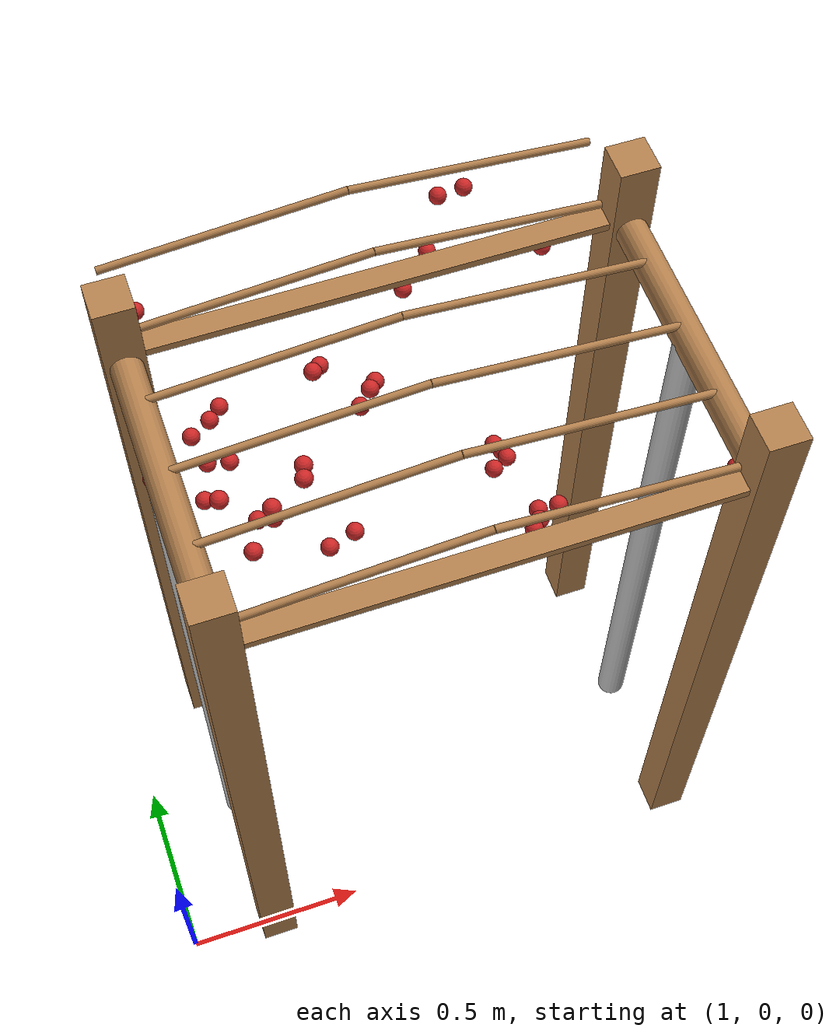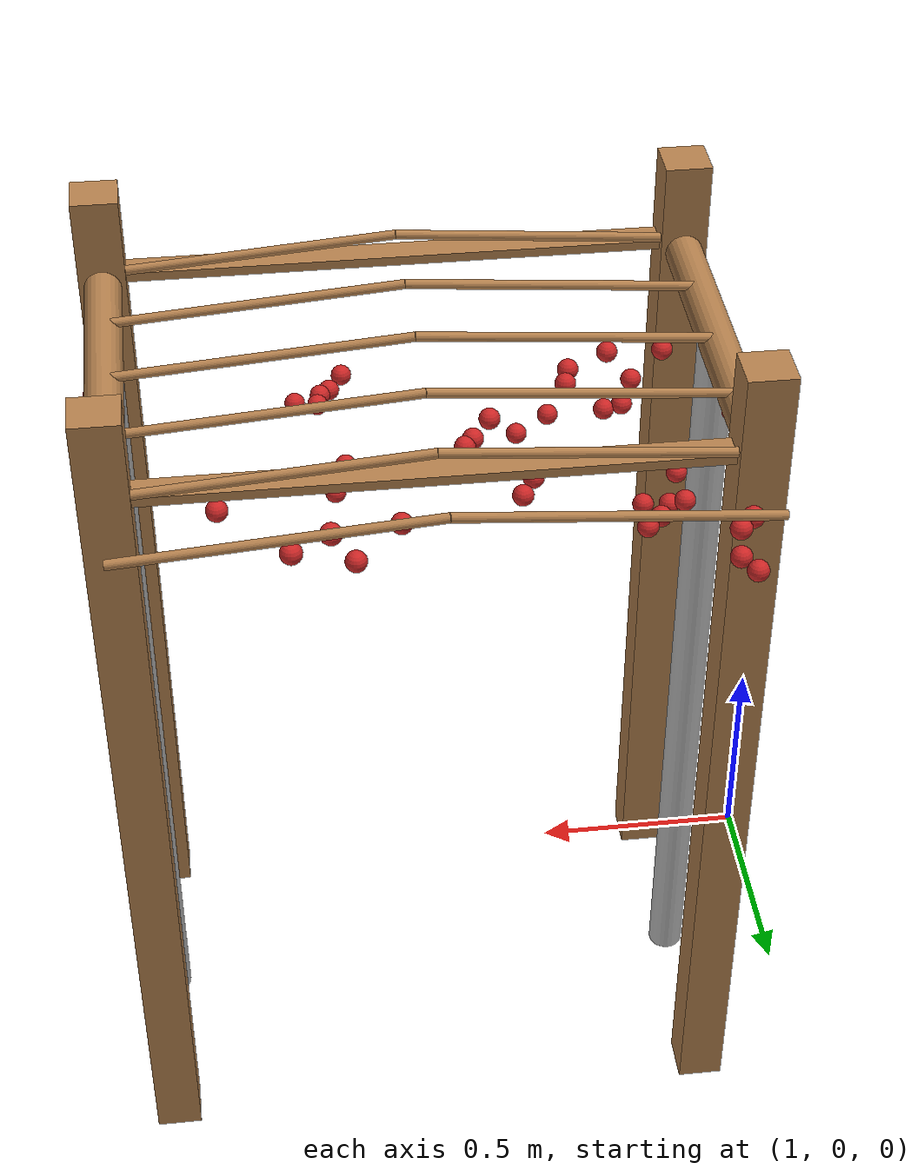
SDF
<sdf version="1.4">
 <model name="pergola">
  <include><name>post_7</name><pose>1.25 0.0 0 0 0 0</pose><uri>model://post</uri></include>
  <include><name>post_8</name><pose>1.25 0.8 0 0 0 0</pose><uri>model://post</uri></include>
  <include><name>post_14</name><pose>2.5 0.0 0 0 0 0</pose><uri>model://post</uri></include>
  <include><name>post_15</name><pose>2.5 0.8 0 0 0 0</pose><uri>model://post</uri></include>
  <link name="beam_7">
   <pose>1.875 0.0 1.81 0 0 0</pose>
   <collision name="collision"><geometry><box><size>1.25 0.06 0.02</size></box></geometry></collision>
   <visual name="visual">
    <geometry><box><size>1.25 0.06 0.02</size></box></geometry>
    <material><script><name>Gazebo/Wood</name></script></material>
   </visual>
   <inertial>
    <mass>5</mass>
    <inertia>
     <ixx>0.0016666666666666668</ixx>
     <ixy>0.0</ixy>
     <ixz>0.0</ixz>
     <iyy>0.6525416666666667</iyy>
     <iyz>0.0</iyz>
     <izz>0.6512083333333333</izz>
    </inertia>
   </inertial>
  </link>
  <link name="beam_8">
   <pose>1.875 0.8 1.81 0 0 0</pose>
   <collision name="collision"><geometry><box><size>1.25 0.06 0.02</size></box></geometry></collision>
   <visual name="visual">
    <geometry><box><size>1.25 0.06 0.02</size></box></geometry>
    <material><script><name>Gazebo/Wood</name></script></material>
   </visual>
   <inertial>
    <mass>5</mass>
    <inertia>
     <ixx>0.0016666666666666668</ixx>
     <ixy>0.0</ixy>
     <ixz>0.0</ixz>
     <iyy>0.6525416666666667</iyy>
     <iyz>0.0</iyz>
     <izz>0.6512083333333333</izz>
    </inertia>
   </inertial>
  </link>
  <include><name>tree_6</name><pose>1.25 0.4 0 0 0 0</pose><uri>model://tree_trunk</uri></include>
  <include><name>tree_12</name><pose>2.5 0.4 0 0 0 0</pose><uri>model://tree_trunk</uri></include>
  <link name="baseBranch_6">
   <pose>1.25 0.4 1.8 1.5707963267948966 0 0</pose>
   <collision name="collision">
    <geometry><cylinder><radius>0.04</radius><length>0.74</length></cylinder></geometry>
   </collision>
   <visual name="visual">
    <geometry><cylinder><radius>0.04</radius><length>0.74</length></cylinder></geometry>
    <material><script><name>Gazebo/WoodFloor</name></script></material>
   </visual>
   <inertial>
    <mass>10</mass>
    <inertia>
     <ixx>0.4603333333333333</ixx>
     <ixy>0.0</ixy>
     <ixz>0.0</ixz>
     <iyy>0.4603333333333333</iyy>
     <iyz>0.0</iyz>
     <izz>0.008</izz>
    </inertia>
   </inertial>
  </link>
  <link name="baseBranch_12">
   <pose>2.5 0.4 1.8 1.5707963267948966 0 0</pose>
   <collision name="collision">
    <geometry><cylinder><radius>0.04</radius><length>0.74</length></cylinder></geometry>
   </collision>
   <visual name="visual">
    <geometry><cylinder><radius>0.04</radius><length>0.74</length></cylinder></geometry>
    <material><script><name>Gazebo/WoodFloor</name></script></material>
   </visual>
   <inertial>
    <mass>10</mass>
    <inertia>
     <ixx>0.4603333333333333</ixx>
     <ixy>0.0</ixy>
     <ixz>0.0</ixz>
     <iyy>0.4603333333333333</iyy>
     <iyz>0.0</iyz>
     <izz>0.008</izz>
    </inertia>
   </inertial>
  </link>
  <link name="vine_48">
   <pose>1.5625 0.03 1.85 0 1.4909663410826592 0</pose>
   <collision name="collision">
    <geometry><cylinder><radius>0.01</radius><length>0.6269968101992226</length></cylinder></geometry>
   </collision>
   <visual name="visual">
    <geometry><cylinder><radius>0.01</radius><length>0.6269968101992226</length></cylinder></geometry>
    <material><script><name>Gazebo/WoodFloor</name></script></material>
   </visual>
   <inertial>
    <mass>5</mass>
    <inertia>
     <ixx>0.1639270833333333</ixx>
     <ixy>0.0</ixy>
     <ixz>0.0</ixz>
     <iyy>0.1639270833333333</iyy>
     <iyz>0.0</iyz>
     <izz>0.00025</izz>
    </inertia>
   </inertial>
  </link>
  <link name="vine_49">
   <pose>2.1875 0.03 1.85 0 -1.4909663410826592 0</pose>
   <collision name="collision">
    <geometry><cylinder><radius>0.01</radius><length>0.6269968101992226</length></cylinder></geometry>
   </collision>
   <visual name="visual">
    <geometry><cylinder><radius>0.01</radius><length>0.6269968101992226</length></cylinder></geometry>
    <material><script><name>Gazebo/WoodFloor</name></script></material>
   </visual>
   <inertial>
    <mass>5</mass>
    <inertia>
     <ixx>0.1639270833333333</ixx>
     <ixy>0.0</ixy>
     <ixz>0.0</ixz>
     <iyy>0.1639270833333333</iyy>
     <iyz>0.0</iyz>
     <izz>0.00025</izz>
    </inertia>
   </inertial>
  </link>
  <link name="vine_50">
   <pose>1.5625 0.23 1.85 0 1.4909663410826592 0</pose>
   <collision name="collision">
    <geometry><cylinder><radius>0.01</radius><length>0.6269968101992226</length></cylinder></geometry>
   </collision>
   <visual name="visual">
    <geometry><cylinder><radius>0.01</radius><length>0.6269968101992226</length></cylinder></geometry>
    <material><script><name>Gazebo/WoodFloor</name></script></material>
   </visual>
   <inertial>
    <mass>5</mass>
    <inertia>
     <ixx>0.1639270833333333</ixx>
     <ixy>0.0</ixy>
     <ixz>0.0</ixz>
     <iyy>0.1639270833333333</iyy>
     <iyz>0.0</iyz>
     <izz>0.00025</izz>
    </inertia>
   </inertial>
  </link>
  <link name="vine_51">
   <pose>2.1875 0.23 1.85 0 -1.4909663410826592 0</pose>
   <collision name="collision">
    <geometry><cylinder><radius>0.01</radius><length>0.6269968101992226</length></cylinder></geometry>
   </collision>
   <visual name="visual">
    <geometry><cylinder><radius>0.01</radius><length>0.6269968101992226</length></cylinder></geometry>
    <material><script><name>Gazebo/WoodFloor</name></script></material>
   </visual>
   <inertial>
    <mass>5</mass>
    <inertia>
     <ixx>0.1639270833333333</ixx>
     <ixy>0.0</ixy>
     <ixz>0.0</ixz>
     <iyy>0.1639270833333333</iyy>
     <iyz>0.0</iyz>
     <izz>0.00025</izz>
    </inertia>
   </inertial>
  </link>
  <link name="vine_52">
   <pose>1.5625 0.43000000000000005 1.85 0 1.4909663410826592 0</pose>
   <collision name="collision">
    <geometry><cylinder><radius>0.01</radius><length>0.6269968101992226</length></cylinder></geometry>
   </collision>
   <visual name="visual">
    <geometry><cylinder><radius>0.01</radius><length>0.6269968101992226</length></cylinder></geometry>
    <material><script><name>Gazebo/WoodFloor</name></script></material>
   </visual>
   <inertial>
    <mass>5</mass>
    <inertia>
     <ixx>0.1639270833333333</ixx>
     <ixy>0.0</ixy>
     <ixz>0.0</ixz>
     <iyy>0.1639270833333333</iyy>
     <iyz>0.0</iyz>
     <izz>0.00025</izz>
    </inertia>
   </inertial>
  </link>
  <link name="vine_53">
   <pose>2.1875 0.43000000000000005 1.85 0 -1.4909663410826592 0</pose>
   <collision name="collision">
    <geometry><cylinder><radius>0.01</radius><length>0.6269968101992226</length></cylinder></geometry>
   </collision>
   <visual name="visual">
    <geometry><cylinder><radius>0.01</radius><length>0.6269968101992226</length></cylinder></geometry>
    <material><script><name>Gazebo/WoodFloor</name></script></material>
   </visual>
   <inertial>
    <mass>5</mass>
    <inertia>
     <ixx>0.1639270833333333</ixx>
     <ixy>0.0</ixy>
     <ixz>0.0</ixz>
     <iyy>0.1639270833333333</iyy>
     <iyz>0.0</iyz>
     <izz>0.00025</izz>
    </inertia>
   </inertial>
  </link>
  <link name="vine_54">
   <pose>1.5625 0.6300000000000001 1.85 0 1.4909663410826592 0</pose>
   <collision name="collision">
    <geometry><cylinder><radius>0.01</radius><length>0.6269968101992226</length></cylinder></geometry>
   </collision>
   <visual name="visual">
    <geometry><cylinder><radius>0.01</radius><length>0.6269968101992226</length></cylinder></geometry>
    <material><script><name>Gazebo/WoodFloor</name></script></material>
   </visual>
   <inertial>
    <mass>5</mass>
    <inertia>
     <ixx>0.1639270833333333</ixx>
     <ixy>0.0</ixy>
     <ixz>0.0</ixz>
     <iyy>0.1639270833333333</iyy>
     <iyz>0.0</iyz>
     <izz>0.00025</izz>
    </inertia>
   </inertial>
  </link>
  <link name="vine_55">
   <pose>2.1875 0.6300000000000001 1.85 0 -1.4909663410826592 0</pose>
   <collision name="collision">
    <geometry><cylinder><radius>0.01</radius><length>0.6269968101992226</length></cylinder></geometry>
   </collision>
   <visual name="visual">
    <geometry><cylinder><radius>0.01</radius><length>0.6269968101992226</length></cylinder></geometry>
    <material><script><name>Gazebo/WoodFloor</name></script></material>
   </visual>
   <inertial>
    <mass>5</mass>
    <inertia>
     <ixx>0.1639270833333333</ixx>
     <ixy>0.0</ixy>
     <ixz>0.0</ixz>
     <iyy>0.1639270833333333</iyy>
     <iyz>0.0</iyz>
     <izz>0.00025</izz>
    </inertia>
   </inertial>
  </link>
  <link name="vine_56">
   <pose>1.5625 0.8300000000000001 1.85 0 1.4909663410826592 0</pose>
   <collision name="collision">
    <geometry><cylinder><radius>0.01</radius><length>0.6269968101992226</length></cylinder></geometry>
   </collision>
   <visual name="visual">
    <geometry><cylinder><radius>0.01</radius><length>0.6269968101992226</length></cylinder></geometry>
    <material><script><name>Gazebo/WoodFloor</name></script></material>
   </visual>
   <inertial>
    <mass>5</mass>
    <inertia>
     <ixx>0.1639270833333333</ixx>
     <ixy>0.0</ixy>
     <ixz>0.0</ixz>
     <iyy>0.1639270833333333</iyy>
     <iyz>0.0</iyz>
     <izz>0.00025</izz>
    </inertia>
   </inertial>
  </link>
  <link name="vine_57">
   <pose>2.1875 0.8300000000000001 1.85 0 -1.4909663410826592 0</pose>
   <collision name="collision">
    <geometry><cylinder><radius>0.01</radius><length>0.6269968101992226</length></cylinder></geometry>
   </collision>
   <visual name="visual">
    <geometry><cylinder><radius>0.01</radius><length>0.6269968101992226</length></cylinder></geometry>
    <material><script><name>Gazebo/WoodFloor</name></script></material>
   </visual>
   <inertial>
    <mass>5</mass>
    <inertia>
     <ixx>0.1639270833333333</ixx>
     <ixy>0.0</ixy>
     <ixz>0.0</ixz>
     <iyy>0.1639270833333333</iyy>
     <iyz>0.0</iyz>
     <izz>0.00025</izz>
    </inertia>
   </inertial>
  </link>
  <link name="vine_58">
   <pose>1.5625 1.03 1.85 0 1.4909663410826592 0</pose>
   <collision name="collision">
    <geometry><cylinder><radius>0.01</radius><length>0.6269968101992226</length></cylinder></geometry>
   </collision>
   <visual name="visual">
    <geometry><cylinder><radius>0.01</radius><length>0.6269968101992226</length></cylinder></geometry>
    <material><script><name>Gazebo/WoodFloor</name></script></material>
   </visual>
   <inertial>
    <mass>5</mass>
    <inertia>
     <ixx>0.1639270833333333</ixx>
     <ixy>0.0</ixy>
     <ixz>0.0</ixz>
     <iyy>0.1639270833333333</iyy>
     <iyz>0.0</iyz>
     <izz>0.00025</izz>
    </inertia>
   </inertial>
  </link>
  <link name="vine_59">
   <pose>2.1875 1.03 1.85 0 -1.4909663410826592 0</pose>
   <collision name="collision">
    <geometry><cylinder><radius>0.01</radius><length>0.6269968101992226</length></cylinder></geometry>
   </collision>
   <visual name="visual">
    <geometry><cylinder><radius>0.01</radius><length>0.6269968101992226</length></cylinder></geometry>
    <material><script><name>Gazebo/WoodFloor</name></script></material>
   </visual>
   <inertial>
    <mass>5</mass>
    <inertia>
     <ixx>0.1639270833333333</ixx>
     <ixy>0.0</ixy>
     <ixz>0.0</ixz>
     <iyy>0.1639270833333333</iyy>
     <iyz>0.0</iyz>
     <izz>0.00025</izz>
    </inertia>
   </inertial>
  </link>
  <link name="fruit_14">
   <pose>1.28473862256658 0.9281463955670968 1.7463136727416269 0 0 0</pose>
   <collision name="fruit_collision_14"><geometry><sphere><radius>0.022</radius></sphere></geometry></collision>
   <visual name="visual">
    <geometry><sphere><radius>0.022</radius></sphere></geometry>
    <material><script><name>Gazebo/Red</name></script></material>
   </visual>
   <inertial>
    <mass>0.05</mass>
    <inertia>
     <ixx>9.679999999999999e-06</ixx>
     <ixy>0.0</ixy>
     <ixz>0.0</ixz>
     <iyy>9.679999999999999e-06</iyy>
     <iyz>0.0</iyz>
     <izz>9.679999999999999e-06</izz>
    </inertia>
   </inertial>
   <sensor name="fruit_contact_14" type="contact">
    <plugin name="contact_plugin_14" filename="libcontact_plugin.so"/>
    <contact><collision>fruit_collision_14</collision><topic>fruit_contact_topic_14</topic></contact>
   </sensor>
  </link>
  <link name="fruit_50">
   <pose>1.3550767969063446 0.3634707346524861 1.7618455705941711 0 0 0</pose>
   <collision name="fruit_collision_50"><geometry><sphere><radius>0.022</radius></sphere></geometry></collision>
   <visual name="visual">
    <geometry><sphere><radius>0.022</radius></sphere></geometry>
    <material><script><name>Gazebo/Red</name></script></material>
   </visual>
   <inertial>
    <mass>0.05</mass>
    <inertia>
     <ixx>9.679999999999999e-06</ixx>
     <ixy>0.0</ixy>
     <ixz>0.0</ixz>
     <iyy>9.679999999999999e-06</iyy>
     <iyz>0.0</iyz>
     <izz>9.679999999999999e-06</izz>
    </inertia>
   </inertial>
   <sensor name="fruit_contact_50" type="contact">
    <plugin name="contact_plugin_50" filename="libcontact_plugin.so"/>
    <contact><collision>fruit_collision_50</collision><topic>fruit_contact_topic_50</topic></contact>
   </sensor>
  </link>
  <link name="fruit_54">
   <pose>1.4003140802416372 0.28393739328154655 1.6388824126447423 0 0 0</pose>
   <collision name="fruit_collision_54"><geometry><sphere><radius>0.022</radius></sphere></geometry></collision>
   <visual name="visual">
    <geometry><sphere><radius>0.022</radius></sphere></geometry>
    <material><script><name>Gazebo/Red</name></script></material>
   </visual>
   <inertial>
    <mass>0.05</mass>
    <inertia>
     <ixx>9.679999999999999e-06</ixx>
     <ixy>0.0</ixy>
     <ixz>0.0</ixz>
     <iyy>9.679999999999999e-06</iyy>
     <iyz>0.0</iyz>
     <izz>9.679999999999999e-06</izz>
    </inertia>
   </inertial>
   <sensor name="fruit_contact_54" type="contact">
    <plugin name="contact_plugin_54" filename="libcontact_plugin.so"/>
    <contact><collision>fruit_collision_54</collision><topic>fruit_contact_topic_54</topic></contact>
   </sensor>
  </link>
  <link name="fruit_60">
   <pose>1.5776458151882216 0.2829237036194701 1.5620018081084672 0 0 0</pose>
   <collision name="fruit_collision_60"><geometry><sphere><radius>0.022</radius></sphere></geometry></collision>
   <visual name="visual">
    <geometry><sphere><radius>0.022</radius></sphere></geometry>
    <material><script><name>Gazebo/Red</name></script></material>
   </visual>
   <inertial>
    <mass>0.05</mass>
    <inertia>
     <ixx>9.679999999999999e-06</ixx>
     <ixy>0.0</ixy>
     <ixz>0.0</ixz>
     <iyy>9.679999999999999e-06</iyy>
     <iyz>0.0</iyz>
     <izz>9.679999999999999e-06</izz>
    </inertia>
   </inertial>
   <sensor name="fruit_contact_60" type="contact">
    <plugin name="contact_plugin_60" filename="libcontact_plugin.so"/>
    <contact><collision>fruit_collision_60</collision><topic>fruit_contact_topic_60</topic></contact>
   </sensor>
  </link>
  <link name="fruit_64">
   <pose>2.293086354411779 0.8068785050736491 1.7604997186289 0 0 0</pose>
   <collision name="fruit_collision_64"><geometry><sphere><radius>0.022</radius></sphere></geometry></collision>
   <visual name="visual">
    <geometry><sphere><radius>0.022</radius></sphere></geometry>
    <material><script><name>Gazebo/Red</name></script></material>
   </visual>
   <inertial>
    <mass>0.05</mass>
    <inertia>
     <ixx>9.679999999999999e-06</ixx>
     <ixy>0.0</ixy>
     <ixz>0.0</ixz>
     <iyy>9.679999999999999e-06</iyy>
     <iyz>0.0</iyz>
     <izz>9.679999999999999e-06</izz>
    </inertia>
   </inertial>
   <sensor name="fruit_contact_64" type="contact">
    <plugin name="contact_plugin_64" filename="libcontact_plugin.so"/>
    <contact><collision>fruit_collision_64</collision><topic>fruit_contact_topic_64</topic></contact>
   </sensor>
  </link>
  <link name="fruit_68">
   <pose>2.510098235482958 0.07835512584455795 1.6165215918585598 0 0 0</pose>
   <collision name="fruit_collision_68"><geometry><sphere><radius>0.022</radius></sphere></geometry></collision>
   <visual name="visual">
    <geometry><sphere><radius>0.022</radius></sphere></geometry>
    <material><script><name>Gazebo/Red</name></script></material>
   </visual>
   <inertial>
    <mass>0.05</mass>
    <inertia>
     <ixx>9.679999999999999e-06</ixx>
     <ixy>0.0</ixy>
     <ixz>0.0</ixz>
     <iyy>9.679999999999999e-06</iyy>
     <iyz>0.0</iyz>
     <izz>9.679999999999999e-06</izz>
    </inertia>
   </inertial>
   <sensor name="fruit_contact_68" type="contact">
    <plugin name="contact_plugin_68" filename="libcontact_plugin.so"/>
    <contact><collision>fruit_collision_68</collision><topic>fruit_contact_topic_68</topic></contact>
   </sensor>
  </link>
  <link name="fruit_99">
   <pose>1.6679076572462894 0.6800455759834785 1.6916428529339365 0 0 0</pose>
   <collision name="fruit_collision_99"><geometry><sphere><radius>0.022</radius></sphere></geometry></collision>
   <visual name="visual">
    <geometry><sphere><radius>0.022</radius></sphere></geometry>
    <material><script><name>Gazebo/Red</name></script></material>
   </visual>
   <inertial>
    <mass>0.05</mass>
    <inertia>
     <ixx>9.679999999999999e-06</ixx>
     <ixy>0.0</ixy>
     <ixz>0.0</ixz>
     <iyy>9.679999999999999e-06</iyy>
     <iyz>0.0</iyz>
     <izz>9.679999999999999e-06</izz>
    </inertia>
   </inertial>
   <sensor name="fruit_contact_99" type="contact">
    <plugin name="contact_plugin_99" filename="libcontact_plugin.so"/>
    <contact><collision>fruit_collision_99</collision><topic>fruit_contact_topic_99</topic></contact>
   </sensor>
  </link>
  <link name="fruit_131">
   <pose>2.007214480214848 0.12235104942401422 1.5902643524395834 0 0 0</pose>
   <collision name="fruit_collision_131"><geometry><sphere><radius>0.022</radius></sphere></geometry></collision>
   <visual name="visual">
    <geometry><sphere><radius>0.022</radius></sphere></geometry>
    <material><script><name>Gazebo/Red</name></script></material>
   </visual>
   <inertial>
    <mass>0.05</mass>
    <inertia>
     <ixx>9.679999999999999e-06</ixx>
     <ixy>0.0</ixy>
     <ixz>0.0</ixz>
     <iyy>9.679999999999999e-06</iyy>
     <iyz>0.0</iyz>
     <izz>9.679999999999999e-06</izz>
    </inertia>
   </inertial>
   <sensor name="fruit_contact_131" type="contact">
    <plugin name="contact_plugin_131" filename="libcontact_plugin.so"/>
    <contact><collision>fruit_collision_131</collision><topic>fruit_contact_topic_131</topic></contact>
   </sensor>
  </link>
  <link name="fruit_167">
   <pose>1.3540782329469534 0.6624674911366601 1.594291225025363 0 0 0</pose>
   <collision name="fruit_collision_167"><geometry><sphere><radius>0.022</radius></sphere></geometry></collision>
   <visual name="visual">
    <geometry><sphere><radius>0.022</radius></sphere></geometry>
    <material><script><name>Gazebo/Red</name></script></material>
   </visual>
   <inertial>
    <mass>0.05</mass>
    <inertia>
     <ixx>9.679999999999999e-06</ixx>
     <ixy>0.0</ixy>
     <ixz>0.0</ixz>
     <iyy>9.679999999999999e-06</iyy>
     <iyz>0.0</iyz>
     <izz>9.679999999999999e-06</izz>
    </inertia>
   </inertial>
   <sensor name="fruit_contact_167" type="contact">
    <plugin name="contact_plugin_167" filename="libcontact_plugin.so"/>
    <contact><collision>fruit_collision_167</collision><topic>fruit_contact_topic_167</topic></contact>
   </sensor>
  </link>
  <link name="fruit_175">
   <pose>2.0883976375150266 0.9867697271026133 1.824385882274817 0 0 0</pose>
   <collision name="fruit_collision_175"><geometry><sphere><radius>0.022</radius></sphere></geometry></collision>
   <visual name="visual">
    <geometry><sphere><radius>0.022</radius></sphere></geometry>
    <material><script><name>Gazebo/Red</name></script></material>
   </visual>
   <inertial>
    <mass>0.05</mass>
    <inertia>
     <ixx>9.679999999999999e-06</ixx>
     <ixy>0.0</ixy>
     <ixz>0.0</ixz>
     <iyy>9.679999999999999e-06</iyy>
     <iyz>0.0</iyz>
     <izz>9.679999999999999e-06</izz>
    </inertia>
   </inertial>
   <sensor name="fruit_contact_175" type="contact">
    <plugin name="contact_plugin_175" filename="libcontact_plugin.so"/>
    <contact><collision>fruit_collision_175</collision><topic>fruit_contact_topic_175</topic></contact>
   </sensor>
  </link>
  <link name="fruit_244">
   <pose>1.4624746198290977 0.3211592305100615 1.7366821460276693 0 0 0</pose>
   <collision name="fruit_collision_244"><geometry><sphere><radius>0.022</radius></sphere></geometry></collision>
   <visual name="visual">
    <geometry><sphere><radius>0.022</radius></sphere></geometry>
    <material><script><name>Gazebo/Red</name></script></material>
   </visual>
   <inertial>
    <mass>0.05</mass>
    <inertia>
     <ixx>9.679999999999999e-06</ixx>
     <ixy>0.0</ixy>
     <ixz>0.0</ixz>
     <iyy>9.679999999999999e-06</iyy>
     <iyz>0.0</iyz>
     <izz>9.679999999999999e-06</izz>
    </inertia>
   </inertial>
   <sensor name="fruit_contact_244" type="contact">
    <plugin name="contact_plugin_244" filename="libcontact_plugin.so"/>
    <contact><collision>fruit_collision_244</collision><topic>fruit_contact_topic_244</topic></contact>
   </sensor>
  </link>
  <link name="fruit_263">
   <pose>1.735716071562123 0.5225775579460339 1.7291641762104901 0 0 0</pose>
   <collision name="fruit_collision_263"><geometry><sphere><radius>0.022</radius></sphere></geometry></collision>
   <visual name="visual">
    <geometry><sphere><radius>0.022</radius></sphere></geometry>
    <material><script><name>Gazebo/Red</name></script></material>
   </visual>
   <inertial>
    <mass>0.05</mass>
    <inertia>
     <ixx>9.679999999999999e-06</ixx>
     <ixy>0.0</ixy>
     <ixz>0.0</ixz>
     <iyy>9.679999999999999e-06</iyy>
     <iyz>0.0</iyz>
     <izz>9.679999999999999e-06</izz>
    </inertia>
   </inertial>
   <sensor name="fruit_contact_263" type="contact">
    <plugin name="contact_plugin_263" filename="libcontact_plugin.so"/>
    <contact><collision>fruit_collision_263</collision><topic>fruit_contact_topic_263</topic></contact>
   </sensor>
  </link>
  <link name="fruit_278">
   <pose>1.9441087075880221 0.8274851555003168 1.7143794959887808 0 0 0</pose>
   <collision name="fruit_collision_278"><geometry><sphere><radius>0.022</radius></sphere></geometry></collision>
   <visual name="visual">
    <geometry><sphere><radius>0.022</radius></sphere></geometry>
    <material><script><name>Gazebo/Red</name></script></material>
   </visual>
   <inertial>
    <mass>0.05</mass>
    <inertia>
     <ixx>9.679999999999999e-06</ixx>
     <ixy>0.0</ixy>
     <ixz>0.0</ixz>
     <iyy>9.679999999999999e-06</iyy>
     <iyz>0.0</iyz>
     <izz>9.679999999999999e-06</izz>
    </inertia>
   </inertial>
   <sensor name="fruit_contact_278" type="contact">
    <plugin name="contact_plugin_278" filename="libcontact_plugin.so"/>
    <contact><collision>fruit_collision_278</collision><topic>fruit_contact_topic_278</topic></contact>
   </sensor>
  </link>
  <link name="fruit_280">
   <pose>2.019517489252758 0.37737928258383197 1.534607549265055 0 0 0</pose>
   <collision name="fruit_collision_280"><geometry><sphere><radius>0.022</radius></sphere></geometry></collision>
   <visual name="visual">
    <geometry><sphere><radius>0.022</radius></sphere></geometry>
    <material><script><name>Gazebo/Red</name></script></material>
   </visual>
   <inertial>
    <mass>0.05</mass>
    <inertia>
     <ixx>9.679999999999999e-06</ixx>
     <ixy>0.0</ixy>
     <ixz>0.0</ixz>
     <iyy>9.679999999999999e-06</iyy>
     <iyz>0.0</iyz>
     <izz>9.679999999999999e-06</izz>
    </inertia>
   </inertial>
   <sensor name="fruit_contact_280" type="contact">
    <plugin name="contact_plugin_280" filename="libcontact_plugin.so"/>
    <contact><collision>fruit_collision_280</collision><topic>fruit_contact_topic_280</topic></contact>
   </sensor>
  </link>
  <link name="fruit_333">
   <pose>1.3390114835142481 0.5076008021547627 1.5507179855238382 0 0 0</pose>
   <collision name="fruit_collision_333"><geometry><sphere><radius>0.022</radius></sphere></geometry></collision>
   <visual name="visual">
    <geometry><sphere><radius>0.022</radius></sphere></geometry>
    <material><script><name>Gazebo/Red</name></script></material>
   </visual>
   <inertial>
    <mass>0.05</mass>
    <inertia>
     <ixx>9.679999999999999e-06</ixx>
     <ixy>0.0</ixy>
     <ixz>0.0</ixz>
     <iyy>9.679999999999999e-06</iyy>
     <iyz>0.0</iyz>
     <izz>9.679999999999999e-06</izz>
    </inertia>
   </inertial>
   <sensor name="fruit_contact_333" type="contact">
    <plugin name="contact_plugin_333" filename="libcontact_plugin.so"/>
    <contact><collision>fruit_collision_333</collision><topic>fruit_contact_topic_333</topic></contact>
   </sensor>
  </link>
  <link name="fruit_348">
   <pose>1.4091985973772345 0.6995356640324805 1.5870557358619695 0 0 0</pose>
   <collision name="fruit_collision_348"><geometry><sphere><radius>0.022</radius></sphere></geometry></collision>
   <visual name="visual">
    <geometry><sphere><radius>0.022</radius></sphere></geometry>
    <material><script><name>Gazebo/Red</name></script></material>
   </visual>
   <inertial>
    <mass>0.05</mass>
    <inertia>
     <ixx>9.679999999999999e-06</ixx>
     <ixy>0.0</ixy>
     <ixz>0.0</ixz>
     <iyy>9.679999999999999e-06</iyy>
     <iyz>0.0</iyz>
     <izz>9.679999999999999e-06</izz>
    </inertia>
   </inertial>
   <sensor name="fruit_contact_348" type="contact">
    <plugin name="contact_plugin_348" filename="libcontact_plugin.so"/>
    <contact><collision>fruit_collision_348</collision><topic>fruit_contact_topic_348</topic></contact>
   </sensor>
  </link>
  <link name="fruit_351">
   <pose>1.313344185817645 0.953219627792411 1.740466020177671 0 0 0</pose>
   <collision name="fruit_collision_351"><geometry><sphere><radius>0.022</radius></sphere></geometry></collision>
   <visual name="visual">
    <geometry><sphere><radius>0.022</radius></sphere></geometry>
    <material><script><name>Gazebo/Red</name></script></material>
   </visual>
   <inertial>
    <mass>0.05</mass>
    <inertia>
     <ixx>9.679999999999999e-06</ixx>
     <ixy>0.0</ixy>
     <ixz>0.0</ixz>
     <iyy>9.679999999999999e-06</iyy>
     <iyz>0.0</iyz>
     <izz>9.679999999999999e-06</izz>
    </inertia>
   </inertial>
   <sensor name="fruit_contact_351" type="contact">
    <plugin name="contact_plugin_351" filename="libcontact_plugin.so"/>
    <contact><collision>fruit_collision_351</collision><topic>fruit_contact_topic_351</topic></contact>
   </sensor>
  </link>
  <link name="fruit_370">
   <pose>1.77542272050878 0.5709989342089912 1.7171538145724647 0 0 0</pose>
   <collision name="fruit_collision_370"><geometry><sphere><radius>0.022</radius></sphere></geometry></collision>
   <visual name="visual">
    <geometry><sphere><radius>0.022</radius></sphere></geometry>
    <material><script><name>Gazebo/Red</name></script></material>
   </visual>
   <inertial>
    <mass>0.05</mass>
    <inertia>
     <ixx>9.679999999999999e-06</ixx>
     <ixy>0.0</ixy>
     <ixz>0.0</ixz>
     <iyy>9.679999999999999e-06</iyy>
     <iyz>0.0</iyz>
     <izz>9.679999999999999e-06</izz>
    </inertia>
   </inertial>
   <sensor name="fruit_contact_370" type="contact">
    <plugin name="contact_plugin_370" filename="libcontact_plugin.so"/>
    <contact><collision>fruit_collision_370</collision><topic>fruit_contact_topic_370</topic></contact>
   </sensor>
  </link>
  <link name="fruit_383">
   <pose>1.373378205364477 0.6087481294812831 1.5475239998279462 0 0 0</pose>
   <collision name="fruit_collision_383"><geometry><sphere><radius>0.022</radius></sphere></geometry></collision>
   <visual name="visual">
    <geometry><sphere><radius>0.022</radius></sphere></geometry>
    <material><script><name>Gazebo/Red</name></script></material>
   </visual>
   <inertial>
    <mass>0.05</mass>
    <inertia>
     <ixx>9.679999999999999e-06</ixx>
     <ixy>0.0</ixy>
     <ixz>0.0</ixz>
     <iyy>9.679999999999999e-06</iyy>
     <iyz>0.0</iyz>
     <izz>9.679999999999999e-06</izz>
    </inertia>
   </inertial>
   <sensor name="fruit_contact_383" type="contact">
    <plugin name="contact_plugin_383" filename="libcontact_plugin.so"/>
    <contact><collision>fruit_collision_383</collision><topic>fruit_contact_topic_383</topic></contact>
   </sensor>
  </link>
  <link name="fruit_453">
   <pose>2.0590584803150667 0.42691290000411963 1.522621937691374 0 0 0</pose>
   <collision name="fruit_collision_453"><geometry><sphere><radius>0.022</radius></sphere></geometry></collision>
   <visual name="visual">
    <geometry><sphere><radius>0.022</radius></sphere></geometry>
    <material><script><name>Gazebo/Red</name></script></material>
   </visual>
   <inertial>
    <mass>0.05</mass>
    <inertia>
     <ixx>9.679999999999999e-06</ixx>
     <ixy>0.0</ixy>
     <ixz>0.0</ixz>
     <iyy>9.679999999999999e-06</iyy>
     <iyz>0.0</iyz>
     <izz>9.679999999999999e-06</izz>
    </inertia>
   </inertial>
   <sensor name="fruit_contact_453" type="contact">
    <plugin name="contact_plugin_453" filename="libcontact_plugin.so"/>
    <contact><collision>fruit_collision_453</collision><topic>fruit_contact_topic_453</topic></contact>
   </sensor>
  </link>
  <link name="fruit_463">
   <pose>1.7937781621805868 0.5903735218286742 1.7127729439579413 0 0 0</pose>
   <collision name="fruit_collision_463"><geometry><sphere><radius>0.022</radius></sphere></geometry></collision>
   <visual name="visual">
    <geometry><sphere><radius>0.022</radius></sphere></geometry>
    <material><script><name>Gazebo/Red</name></script></material>
   </visual>
   <inertial>
    <mass>0.05</mass>
    <inertia>
     <ixx>9.679999999999999e-06</ixx>
     <ixy>0.0</ixy>
     <ixz>0.0</ixz>
     <iyy>9.679999999999999e-06</iyy>
     <iyz>0.0</iyz>
     <izz>9.679999999999999e-06</izz>
    </inertia>
   </inertial>
   <sensor name="fruit_contact_463" type="contact">
    <plugin name="contact_plugin_463" filename="libcontact_plugin.so"/>
    <contact><collision>fruit_collision_463</collision><topic>fruit_contact_topic_463</topic></contact>
   </sensor>
  </link>
  <link name="fruit_508">
   <pose>2.5401102732015266 0.15410847795779034 1.6040626401227687 0 0 0</pose>
   <collision name="fruit_collision_508"><geometry><sphere><radius>0.022</radius></sphere></geometry></collision>
   <visual name="visual">
    <geometry><sphere><radius>0.022</radius></sphere></geometry>
    <material><script><name>Gazebo/Red</name></script></material>
   </visual>
   <inertial>
    <mass>0.05</mass>
    <inertia>
     <ixx>9.679999999999999e-06</ixx>
     <ixy>0.0</ixy>
     <ixz>0.0</ixz>
     <iyy>9.679999999999999e-06</iyy>
     <iyz>0.0</iyz>
     <izz>9.679999999999999e-06</izz>
    </inertia>
   </inertial>
   <sensor name="fruit_contact_508" type="contact">
    <plugin name="contact_plugin_508" filename="libcontact_plugin.so"/>
    <contact><collision>fruit_collision_508</collision><topic>fruit_contact_topic_508</topic></contact>
   </sensor>
  </link>
  <link name="fruit_528">
   <pose>2.0402970045257196 0.9254751303891448 1.708441947942273 0 0 0</pose>
   <collision name="fruit_collision_528"><geometry><sphere><radius>0.022</radius></sphere></geometry></collision>
   <visual name="visual">
    <geometry><sphere><radius>0.022</radius></sphere></geometry>
    <material><script><name>Gazebo/Red</name></script></material>
   </visual>
   <inertial>
    <mass>0.05</mass>
    <inertia>
     <ixx>9.679999999999999e-06</ixx>
     <ixy>0.0</ixy>
     <ixz>0.0</ixz>
     <iyy>9.679999999999999e-06</iyy>
     <iyz>0.0</iyz>
     <izz>9.679999999999999e-06</izz>
    </inertia>
   </inertial>
   <sensor name="fruit_contact_528" type="contact">
    <plugin name="contact_plugin_528" filename="libcontact_plugin.so"/>
    <contact><collision>fruit_collision_528</collision><topic>fruit_contact_topic_528</topic></contact>
   </sensor>
  </link>
  <link name="fruit_556">
   <pose>2.0370832662120892 0.16518107267739368 1.5823516122876844 0 0 0</pose>
   <collision name="fruit_collision_556"><geometry><sphere><radius>0.022</radius></sphere></geometry></collision>
   <visual name="visual">
    <geometry><sphere><radius>0.022</radius></sphere></geometry>
    <material><script><name>Gazebo/Red</name></script></material>
   </visual>
   <inertial>
    <mass>0.05</mass>
    <inertia>
     <ixx>9.679999999999999e-06</ixx>
     <ixy>0.0</ixy>
     <ixz>0.0</ixz>
     <iyy>9.679999999999999e-06</iyy>
     <iyz>0.0</iyz>
     <izz>9.679999999999999e-06</izz>
    </inertia>
   </inertial>
   <sensor name="fruit_contact_556" type="contact">
    <plugin name="contact_plugin_556" filename="libcontact_plugin.so"/>
    <contact><collision>fruit_collision_556</collision><topic>fruit_contact_topic_556</topic></contact>
   </sensor>
  </link>
  <link name="fruit_559">
   <pose>2.0654572020846658 0.2118871174452458 1.5783915540959192 0 0 0</pose>
   <collision name="fruit_collision_559"><geometry><sphere><radius>0.022</radius></sphere></geometry></collision>
   <visual name="visual">
    <geometry><sphere><radius>0.022</radius></sphere></geometry>
    <material><script><name>Gazebo/Red</name></script></material>
   </visual>
   <inertial>
    <mass>0.05</mass>
    <inertia>
     <ixx>9.679999999999999e-06</ixx>
     <ixy>0.0</ixy>
     <ixz>0.0</ixz>
     <iyy>9.679999999999999e-06</iyy>
     <iyz>0.0</iyz>
     <izz>9.679999999999999e-06</izz>
    </inertia>
   </inertial>
   <sensor name="fruit_contact_559" type="contact">
    <plugin name="contact_plugin_559" filename="libcontact_plugin.so"/>
    <contact><collision>fruit_collision_559</collision><topic>fruit_contact_topic_559</topic></contact>
   </sensor>
  </link>
  <link name="fruit_577">
   <pose>1.2840387096742898 0.9970332577829111 1.6711052568646694 0 0 0</pose>
   <collision name="fruit_collision_577"><geometry><sphere><radius>0.022</radius></sphere></geometry></collision>
   <visual name="visual">
    <geometry><sphere><radius>0.022</radius></sphere></geometry>
    <material><script><name>Gazebo/Red</name></script></material>
   </visual>
   <inertial>
    <mass>0.05</mass>
    <inertia>
     <ixx>9.679999999999999e-06</ixx>
     <ixy>0.0</ixy>
     <ixz>0.0</ixz>
     <iyy>9.679999999999999e-06</iyy>
     <iyz>0.0</iyz>
     <izz>9.679999999999999e-06</izz>
    </inertia>
   </inertial>
   <sensor name="fruit_contact_577" type="contact">
    <plugin name="contact_plugin_577" filename="libcontact_plugin.so"/>
    <contact><collision>fruit_collision_577</collision><topic>fruit_contact_topic_577</topic></contact>
   </sensor>
  </link>
  <link name="fruit_584">
   <pose>1.4715189952698533 0.3633620125111724 1.6220750526866505 0 0 0</pose>
   <collision name="fruit_collision_584"><geometry><sphere><radius>0.022</radius></sphere></geometry></collision>
   <visual name="visual">
    <geometry><sphere><radius>0.022</radius></sphere></geometry>
    <material><script><name>Gazebo/Red</name></script></material>
   </visual>
   <inertial>
    <mass>0.05</mass>
    <inertia>
     <ixx>9.679999999999999e-06</ixx>
     <ixy>0.0</ixy>
     <ixz>0.0</ixz>
     <iyy>9.679999999999999e-06</iyy>
     <iyz>0.0</iyz>
     <izz>9.679999999999999e-06</izz>
    </inertia>
   </inertial>
   <sensor name="fruit_contact_584" type="contact">
    <plugin name="contact_plugin_584" filename="libcontact_plugin.so"/>
    <contact><collision>fruit_collision_584</collision><topic>fruit_contact_topic_584</topic></contact>
   </sensor>
  </link>
  <link name="fruit_587">
   <pose>1.4340152941895097 0.36442286848710836 1.633013076067424 0 0 0</pose>
   <collision name="fruit_collision_587"><geometry><sphere><radius>0.022</radius></sphere></geometry></collision>
   <visual name="visual">
    <geometry><sphere><radius>0.022</radius></sphere></geometry>
    <material><script><name>Gazebo/Red</name></script></material>
   </visual>
   <inertial>
    <mass>0.05</mass>
    <inertia>
     <ixx>9.679999999999999e-06</ixx>
     <ixy>0.0</ixy>
     <ixz>0.0</ixz>
     <iyy>9.679999999999999e-06</iyy>
     <iyz>0.0</iyz>
     <izz>9.679999999999999e-06</izz>
    </inertia>
   </inertial>
   <sensor name="fruit_contact_587" type="contact">
    <plugin name="contact_plugin_587" filename="libcontact_plugin.so"/>
    <contact><collision>fruit_collision_587</collision><topic>fruit_contact_topic_587</topic></contact>
   </sensor>
  </link>
  <link name="fruit_597">
   <pose>1.3051094436951496 0.9454163078563013 1.6659145740827581 0 0 0</pose>
   <collision name="fruit_collision_597"><geometry><sphere><radius>0.022</radius></sphere></geometry></collision>
   <visual name="visual">
    <geometry><sphere><radius>0.022</radius></sphere></geometry>
    <material><script><name>Gazebo/Red</name></script></material>
   </visual>
   <inertial>
    <mass>0.05</mass>
    <inertia>
     <ixx>9.679999999999999e-06</ixx>
     <ixy>0.0</ixy>
     <ixz>0.0</ixz>
     <iyy>9.679999999999999e-06</iyy>
     <iyz>0.0</iyz>
     <izz>9.679999999999999e-06</izz>
    </inertia>
   </inertial>
   <sensor name="fruit_contact_597" type="contact">
    <plugin name="contact_plugin_597" filename="libcontact_plugin.so"/>
    <contact><collision>fruit_collision_597</collision><topic>fruit_contact_topic_597</topic></contact>
   </sensor>
  </link>
  <link name="fruit_600">
   <pose>1.6921173333449433 0.7071247548668713 1.670024306157687 0 0 0</pose>
   <collision name="fruit_collision_600"><geometry><sphere><radius>0.022</radius></sphere></geometry></collision>
   <visual name="visual">
    <geometry><sphere><radius>0.022</radius></sphere></geometry>
    <material><script><name>Gazebo/Red</name></script></material>
   </visual>
   <inertial>
    <mass>0.05</mass>
    <inertia>
     <ixx>9.679999999999999e-06</ixx>
     <ixy>0.0</ixy>
     <ixz>0.0</ixz>
     <iyy>9.679999999999999e-06</iyy>
     <iyz>0.0</iyz>
     <izz>9.679999999999999e-06</izz>
    </inertia>
   </inertial>
   <sensor name="fruit_contact_600" type="contact">
    <plugin name="contact_plugin_600" filename="libcontact_plugin.so"/>
    <contact><collision>fruit_collision_600</collision><topic>fruit_contact_topic_600</topic></contact>
   </sensor>
  </link>
  <link name="fruit_613">
   <pose>1.6492638396524482 0.3161574596968231 1.5414731097417198 0 0 0</pose>
   <collision name="fruit_collision_613"><geometry><sphere><radius>0.022</radius></sphere></geometry></collision>
   <visual name="visual">
    <geometry><sphere><radius>0.022</radius></sphere></geometry>
    <material><script><name>Gazebo/Red</name></script></material>
   </visual>
   <inertial>
    <mass>0.05</mass>
    <inertia>
     <ixx>9.679999999999999e-06</ixx>
     <ixy>0.0</ixy>
     <ixz>0.0</ixz>
     <iyy>9.679999999999999e-06</iyy>
     <iyz>0.0</iyz>
     <izz>9.679999999999999e-06</izz>
    </inertia>
   </inertial>
   <sensor name="fruit_contact_613" type="contact">
    <plugin name="contact_plugin_613" filename="libcontact_plugin.so"/>
    <contact><collision>fruit_collision_613</collision><topic>fruit_contact_topic_613</topic></contact>
   </sensor>
  </link>
  <link name="fruit_616">
   <pose>2.113686593729521 0.2065223448066199 1.5820846088826646 0 0 0</pose>
   <collision name="fruit_collision_616"><geometry><sphere><radius>0.022</radius></sphere></geometry></collision>
   <visual name="visual">
    <geometry><sphere><radius>0.022</radius></sphere></geometry>
    <material><script><name>Gazebo/Red</name></script></material>
   </visual>
   <inertial>
    <mass>0.05</mass>
    <inertia>
     <ixx>9.679999999999999e-06</ixx>
     <ixy>0.0</ixy>
     <ixz>0.0</ixz>
     <iyy>9.679999999999999e-06</iyy>
     <iyz>0.0</iyz>
     <izz>9.679999999999999e-06</izz>
    </inertia>
   </inertial>
   <sensor name="fruit_contact_616" type="contact">
    <plugin name="contact_plugin_616" filename="libcontact_plugin.so"/>
    <contact><collision>fruit_collision_616</collision><topic>fruit_contact_topic_616</topic></contact>
   </sensor>
  </link>
  <link name="fruit_620">
   <pose>2.1637698419027935 1.0096885571282843 1.804407195941218 0 0 0</pose>
   <collision name="fruit_collision_620"><geometry><sphere><radius>0.022</radius></sphere></geometry></collision>
   <visual name="visual">
    <geometry><sphere><radius>0.022</radius></sphere></geometry>
    <material><script><name>Gazebo/Red</name></script></material>
   </visual>
   <inertial>
    <mass>0.05</mass>
    <inertia>
     <ixx>9.679999999999999e-06</ixx>
     <ixy>0.0</ixy>
     <ixz>0.0</ixz>
     <iyy>9.679999999999999e-06</iyy>
     <iyz>0.0</iyz>
     <izz>9.679999999999999e-06</izz>
    </inertia>
   </inertial>
   <sensor name="fruit_contact_620" type="contact">
    <plugin name="contact_plugin_620" filename="libcontact_plugin.so"/>
    <contact><collision>fruit_collision_620</collision><topic>fruit_contact_topic_620</topic></contact>
   </sensor>
  </link>
  <link name="fruit_630">
   <pose>1.2322479842380347 0.5084501319126609 1.6962912181580343 0 0 0</pose>
   <collision name="fruit_collision_630"><geometry><sphere><radius>0.022</radius></sphere></geometry></collision>
   <visual name="visual">
    <geometry><sphere><radius>0.022</radius></sphere></geometry>
    <material><script><name>Gazebo/Red</name></script></material>
   </visual>
   <inertial>
    <mass>0.05</mass>
    <inertia>
     <ixx>9.679999999999999e-06</ixx>
     <ixy>0.0</ixy>
     <ixz>0.0</ixz>
     <iyy>9.679999999999999e-06</iyy>
     <iyz>0.0</iyz>
     <izz>9.679999999999999e-06</izz>
    </inertia>
   </inertial>
   <sensor name="fruit_contact_630" type="contact">
    <plugin name="contact_plugin_630" filename="libcontact_plugin.so"/>
    <contact><collision>fruit_collision_630</collision><topic>fruit_contact_topic_630</topic></contact>
   </sensor>
  </link>
  <link name="fruit_645">
   <pose>1.4417610383541388 0.7300593899584364 1.5866681666652658 0 0 0</pose>
   <collision name="fruit_collision_645"><geometry><sphere><radius>0.022</radius></sphere></geometry></collision>
   <visual name="visual">
    <geometry><sphere><radius>0.022</radius></sphere></geometry>
    <material><script><name>Gazebo/Red</name></script></material>
   </visual>
   <inertial>
    <mass>0.05</mass>
    <inertia>
     <ixx>9.679999999999999e-06</ixx>
     <ixy>0.0</ixy>
     <ixz>0.0</ixz>
     <iyy>9.679999999999999e-06</iyy>
     <iyz>0.0</iyz>
     <izz>9.679999999999999e-06</izz>
    </inertia>
   </inertial>
   <sensor name="fruit_contact_645" type="contact">
    <plugin name="contact_plugin_645" filename="libcontact_plugin.so"/>
    <contact><collision>fruit_collision_645</collision><topic>fruit_contact_topic_645</topic></contact>
   </sensor>
  </link>
  <link name="fruit_682">
   <pose>1.5639655092623743 0.412566822176753 1.7268304360694762 0 0 0</pose>
   <collision name="fruit_collision_682"><geometry><sphere><radius>0.022</radius></sphere></geometry></collision>
   <visual name="visual">
    <geometry><sphere><radius>0.022</radius></sphere></geometry>
    <material><script><name>Gazebo/Red</name></script></material>
   </visual>
   <inertial>
    <mass>0.05</mass>
    <inertia>
     <ixx>9.679999999999999e-06</ixx>
     <ixy>0.0</ixy>
     <ixz>0.0</ixz>
     <iyy>9.679999999999999e-06</iyy>
     <iyz>0.0</iyz>
     <izz>9.679999999999999e-06</izz>
    </inertia>
   </inertial>
   <sensor name="fruit_contact_682" type="contact">
    <plugin name="contact_plugin_682" filename="libcontact_plugin.so"/>
    <contact><collision>fruit_collision_682</collision><topic>fruit_contact_topic_682</topic></contact>
   </sensor>
  </link>
  <link name="fruit_702">
   <pose>2.057570703159702 0.18214634613441735 1.582307050310166 0 0 0</pose>
   <collision name="fruit_collision_702"><geometry><sphere><radius>0.022</radius></sphere></geometry></collision>
   <visual name="visual">
    <geometry><sphere><radius>0.022</radius></sphere></geometry>
    <material><script><name>Gazebo/Red</name></script></material>
   </visual>
   <inertial>
    <mass>0.05</mass>
    <inertia>
     <ixx>9.679999999999999e-06</ixx>
     <ixy>0.0</ixy>
     <ixz>0.0</ixz>
     <iyy>9.679999999999999e-06</iyy>
     <iyz>0.0</iyz>
     <izz>9.679999999999999e-06</izz>
    </inertia>
   </inertial>
   <sensor name="fruit_contact_702" type="contact">
    <plugin name="contact_plugin_702" filename="libcontact_plugin.so"/>
    <contact><collision>fruit_collision_702</collision><topic>fruit_contact_topic_702</topic></contact>
   </sensor>
  </link>
  <link name="fruit_752">
   <pose>2.060854039825886 0.40020059925605517 1.5324770831967993 0 0 0</pose>
   <collision name="fruit_collision_752"><geometry><sphere><radius>0.022</radius></sphere></geometry></collision>
   <visual name="visual">
    <geometry><sphere><radius>0.022</radius></sphere></geometry>
    <material><script><name>Gazebo/Red</name></script></material>
   </visual>
   <inertial>
    <mass>0.05</mass>
    <inertia>
     <ixx>9.679999999999999e-06</ixx>
     <ixy>0.0</ixy>
     <ixz>0.0</ixz>
     <iyy>9.679999999999999e-06</iyy>
     <iyz>0.0</iyz>
     <izz>9.679999999999999e-06</izz>
    </inertia>
   </inertial>
   <sensor name="fruit_contact_752" type="contact">
    <plugin name="contact_plugin_752" filename="libcontact_plugin.so"/>
    <contact><collision>fruit_collision_752</collision><topic>fruit_contact_topic_752</topic></contact>
   </sensor>
  </link>
  <link name="fruit_775">
   <pose>1.5530206694065445 0.37297903752472383 1.7342645974699784 0 0 0</pose>
   <collision name="fruit_collision_775"><geometry><sphere><radius>0.022</radius></sphere></geometry></collision>
   <visual name="visual">
    <geometry><sphere><radius>0.022</radius></sphere></geometry>
    <material><script><name>Gazebo/Red</name></script></material>
   </visual>
   <inertial>
    <mass>0.05</mass>
    <inertia>
     <ixx>9.679999999999999e-06</ixx>
     <ixy>0.0</ixy>
     <ixz>0.0</ixz>
     <iyy>9.679999999999999e-06</iyy>
     <iyz>0.0</iyz>
     <izz>9.679999999999999e-06</izz>
    </inertia>
   </inertial>
   <sensor name="fruit_contact_775" type="contact">
    <plugin name="contact_plugin_775" filename="libcontact_plugin.so"/>
    <contact><collision>fruit_collision_775</collision><topic>fruit_contact_topic_775</topic></contact>
   </sensor>
  </link>
  <link name="fruit_794">
   <pose>2.0472587554968253 0.45251665958033416 1.5206930831297167 0 0 0</pose>
   <collision name="fruit_collision_794"><geometry><sphere><radius>0.022</radius></sphere></geometry></collision>
   <visual name="visual">
    <geometry><sphere><radius>0.022</radius></sphere></geometry>
    <material><script><name>Gazebo/Red</name></script></material>
   </visual>
   <inertial>
    <mass>0.05</mass>
    <inertia>
     <ixx>9.679999999999999e-06</ixx>
     <ixy>0.0</ixy>
     <ixz>0.0</ixz>
     <iyy>9.679999999999999e-06</iyy>
     <iyz>0.0</iyz>
     <izz>9.679999999999999e-06</izz>
    </inertia>
   </inertial>
   <sensor name="fruit_contact_794" type="contact">
    <plugin name="contact_plugin_794" filename="libcontact_plugin.so"/>
    <contact><collision>fruit_collision_794</collision><topic>fruit_contact_topic_794</topic></contact>
   </sensor>
  </link>
  <link name="fruit_818">
   <pose>1.4259477834139274 0.5983362187379632 1.5437445939415486 0 0 0</pose>
   <collision name="fruit_collision_818"><geometry><sphere><radius>0.022</radius></sphere></geometry></collision>
   <visual name="visual">
    <geometry><sphere><radius>0.022</radius></sphere></geometry>
    <material><script><name>Gazebo/Red</name></script></material>
   </visual>
   <inertial>
    <mass>0.05</mass>
    <inertia>
     <ixx>9.679999999999999e-06</ixx>
     <ixy>0.0</ixy>
     <ixz>0.0</ixz>
     <iyy>9.679999999999999e-06</iyy>
     <iyz>0.0</iyz>
     <izz>9.679999999999999e-06</izz>
    </inertia>
   </inertial>
   <sensor name="fruit_contact_818" type="contact">
    <plugin name="contact_plugin_818" filename="libcontact_plugin.so"/>
    <contact><collision>fruit_collision_818</collision><topic>fruit_contact_topic_818</topic></contact>
   </sensor>
  </link>
 </model>
</sdf>
